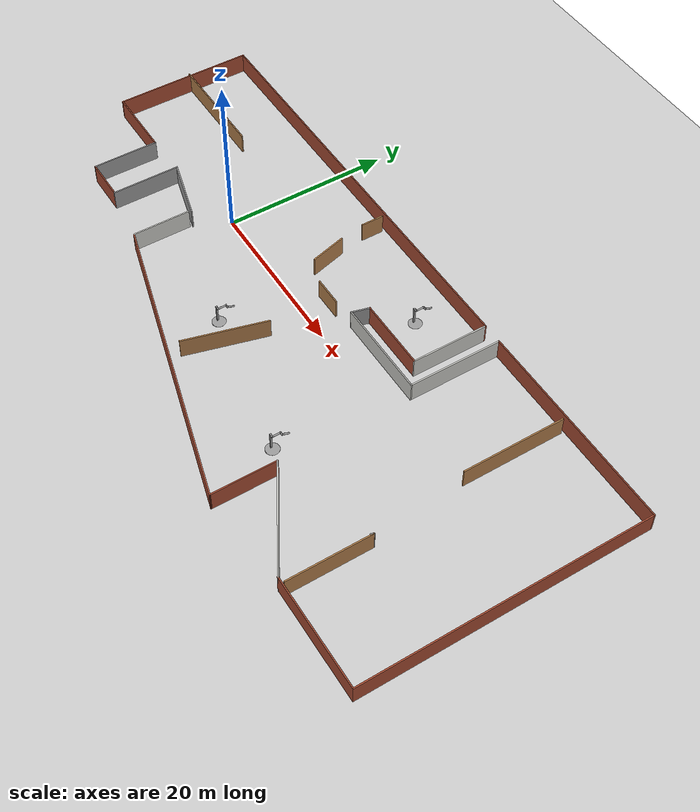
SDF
<sdf version="1.7">
 <world name="default">
  <light name="sun" type="directional">
   <pose>0 0 10 0 -0 0</pose>
   <diffuse>0.8 0.8 0.8 1</diffuse>
   <specular>0.2 0.2 0.2 1</specular>
   <attenuation>
    <range>1000</range>
    <constant>0.9</constant>
    <linear>0.01</linear>
    <quadratic>0.001</quadratic>
   </attenuation>
   <direction>-0.5 0.1 -0.9</direction>
   <spot><inner_angle>0</inner_angle><outer_angle>0</outer_angle><falloff>0</falloff></spot>
  </light>
  <model name="ground_plane">
   <static>1</static>
   <link name="link">
    <collision name="collision">
     <geometry><plane><normal>0 0 1</normal><size>100 100</size></plane></geometry>
     <surface>
      <contact><collide_bitmask>65535</collide_bitmask></contact>
      <friction><ode><mu>100</mu><mu2>50</mu2></ode></friction>
     </surface>
    </collision>
    <visual name="visual">
     <cast_shadows>0</cast_shadows>
     <geometry><plane><normal>0 0 1</normal><size>100 100</size></plane></geometry>
     <material>
      <script><uri>file://media/materials/scripts/gazebo.material</uri><name>Gazebo/Grey</name></script>
     </material>
    </visual>
   </link>
  </model>
  <gravity>0 0 -9.8</gravity>
  <magnetic_field>6e-06 2.3e-05 -4.2e-05</magnetic_field>
  <atmosphere type="adiabatic"/>
  <physics type="ode">
   <max_step_size>0.001</max_step_size>
   <real_time_factor>1</real_time_factor>
   <real_time_update_rate>1000</real_time_update_rate>
  </physics>
  <scene><ambient>0.4 0.4 0.4 1</ambient><background>0.7 0.7 0.7 1</background><shadows>1</shadows></scene>
  <spherical_coordinates>
   <surface_model>EARTH_WGS84</surface_model>
   <latitude_deg>0</latitude_deg>
   <longitude_deg>0</longitude_deg>
   <elevation>0</elevation>
   <heading_deg>0</heading_deg>
  </spherical_coordinates>
  <model name="world">
   <pose>17.1031 -3.11097 0 0 -0 0</pose>
   <link name="Wall_39">
    <collision name="Wall_39_Collision">
     <geometry><box><size>7 0.15 2.5</size></box></geometry>
     <pose>0 0 1.25 0 -0 0</pose>
    </collision>
    <visual name="Wall_39_Visual">
     <pose>0 0 1.25 0 -0 0</pose>
     <geometry><box><size>7 0.15 2.5</size></box></geometry>
     <material>
      <script><uri>file://media/materials/scripts/gazebo.material</uri><name>Gazebo/CeilingTiled</name></script>
      <ambient>1 1 1 1</ambient>
     </material>
     <meta><layer>0</layer></meta>
    </visual>
    <pose>-19.2015 -4.74772 0 0 -0 -1.5708</pose>
   </link>
   <link name="Wall_40">
    <collision name="Wall_40_Collision">
     <geometry><box><size>36.5 0.15 2.5</size></box></geometry>
     <pose>0 0 1.25 0 -0 0</pose>
    </collision>
    <visual name="Wall_40_Visual">
     <pose>0 0 1.25 0 -0 0</pose>
     <geometry><box><size>36.5 0.15 2.5</size></box></geometry>
     <material>
      <script><uri>file://media/materials/scripts/gazebo.material</uri><name>Gazebo/Bricks</name></script>
      <ambient>1 1 1 1</ambient>
     </material>
     <meta><layer>0</layer></meta>
    </visual>
    <pose>-1.64575 -12.8768 0 0 -0 -0.261799</pose>
   </link>
   <link name="Wall_41">
    <collision name="Wall_41_Collision">
     <geometry><box><size>7.75 0.15 2.5</size></box></geometry>
     <pose>0 0 1.25 0 -0 0</pose>
    </collision>
    <visual name="Wall_41_Visual">
     <pose>0 0 1.25 0 -0 0</pose>
     <geometry><box><size>7.75 0.15 2.5</size></box></geometry>
     <material>
      <script><uri>file://media/materials/scripts/gazebo.material</uri><name>Gazebo/Bricks</name></script>
      <ambient>1 1 1 1</ambient>
     </material>
     <meta><layer>0</layer></meta>
    </visual>
    <pose>15.9099 -13.7808 0 0 -0 1.5708</pose>
   </link>
   <link name="Wall_42">
    <collision name="Wall_42_Collision">
     <geometry><box><size>13.25 0.15 2.5</size></box></geometry>
     <pose>0 0 1.25 0 -0 0</pose>
    </collision>
    <visual name="Wall_42_Visual">
     <pose>0 0 1.25 0 -0 0</pose>
     <geometry><box><size>13.25 0.15 2.5</size></box></geometry>
     <material>
      <script><uri>file://media/materials/scripts/gazebo.material</uri><name>Gazebo/CeilingTiled</name></script>
      <ambient>1 1 1 1</ambient>
     </material>
     <meta><layer>0</layer></meta>
    </visual>
    <pose>21.5824 -13.2558 0 0 -0 -0.523599</pose>
   </link>
   <link name="Wall_43">
    <collision name="Wall_43_Collision">
     <geometry><box><size>13.25 0.15 2.5</size></box></geometry>
     <pose>0 0 1.25 0 -0 0</pose>
    </collision>
    <visual name="Wall_43_Visual">
     <pose>0 0 1.25 0 -0 0</pose>
     <geometry><box><size>13.25 0.15 2.5</size></box></geometry>
     <material>
      <script><uri>file://media/materials/scripts/gazebo.material</uri><name>Gazebo/Bricks</name></script>
      <ambient>1 1 1 1</ambient>
     </material>
     <meta><layer>0</layer></meta>
    </visual>
    <pose>33.8049 -16.5308 0 0 -0 0</pose>
   </link>
   <link name="Wall_44">
    <collision name="Wall_44_Collision">
     <geometry><box><size>34.25 0.15 2.5</size></box></geometry>
     <pose>0 0 1.25 0 -0 0</pose>
    </collision>
    <visual name="Wall_44_Visual">
     <pose>0 0 1.25 0 -0 0</pose>
     <geometry><box><size>34.25 0.15 2.5</size></box></geometry>
     <material>
      <script><uri>file://media/materials/scripts/gazebo.material</uri><name>Gazebo/Bricks</name></script>
      <ambient>1 1 1 1</ambient>
     </material>
     <meta><layer>0</layer></meta>
    </visual>
    <pose>40.3549 0.519205 0 0 -0 1.5708</pose>
   </link>
   <link name="Wall_45">
    <collision name="Wall_45_Collision">
     <geometry><box><size>25.5 0.15 2.5</size></box></geometry>
     <pose>0 0 1.25 0 -0 0</pose>
    </collision>
    <visual name="Wall_45_Visual">
     <pose>0 0 1.25 0 -0 0</pose>
     <geometry><box><size>25.5 0.15 2.5</size></box></geometry>
     <material>
      <script><uri>file://media/materials/scripts/gazebo.material</uri><name>Gazebo/Bricks</name></script>
      <ambient>1 1 1 1</ambient>
     </material>
     <meta><layer>0</layer></meta>
    </visual>
    <pose>27.6799 17.5692 0 0 -0 3.14159</pose>
   </link>
   <link name="Wall_46">
    <collision name="Wall_46_Collision">
     <geometry><box><size>11.25 0.15 2.5</size></box></geometry>
     <pose>0 0 1.25 0 -0 0</pose>
    </collision>
    <visual name="Wall_46_Visual">
     <pose>0 0 1.25 0 -0 0</pose>
     <geometry><box><size>11.25 0.15 2.5</size></box></geometry>
     <material>
      <script><uri>file://media/materials/scripts/gazebo.material</uri><name>Gazebo/CeilingTiled</name></script>
      <ambient>1 1 1 1</ambient>
     </material>
     <meta><layer>0</layer></meta>
    </visual>
    <pose>15.0049 12.0192 0 0 -0 -1.5708</pose>
   </link>
   <link name="Wall_47">
    <collision name="Wall_47_Collision">
     <geometry><box><size>11.75 0.15 2.5</size></box></geometry>
     <pose>0 0 1.25 0 -0 0</pose>
    </collision>
    <visual name="Wall_47_Visual">
     <pose>0 0 1.25 0 -0 0</pose>
     <geometry><box><size>11.75 0.15 2.5</size></box></geometry>
     <material>
      <script><uri>file://media/materials/scripts/gazebo.material</uri><name>Gazebo/CeilingTiled</name></script>
      <ambient>1 1 1 1</ambient>
     </material>
     <meta><layer>0</layer></meta>
    </visual>
    <pose>9.20488 6.4692 0 0 -0 3.14159</pose>
   </link>
   <link name="Wall_48">
    <collision name="Wall_48_Collision">
     <geometry><box><size>2.25 0.15 2.5</size></box></geometry>
     <pose>0 0 1.25 0 -0 0</pose>
    </collision>
    <visual name="Wall_48_Visual">
     <pose>0 0 1.25 0 -0 0</pose>
     <geometry><box><size>2.25 0.15 2.5</size></box></geometry>
     <material>
      <script><uri>file://media/materials/scripts/gazebo.material</uri><name>Gazebo/Grey</name></script>
      <ambient>1 1 1 1</ambient>
     </material>
     <meta><layer>0</layer></meta>
    </visual>
    <pose>3.67664 7.48343 0 0 -0 1.309</pose>
   </link>
   <link name="Wall_49">
    <collision name="Wall_49_Collision">
     <geometry><box><size>8.75 0.15 2.5</size></box></geometry>
     <pose>0 0 1.25 0 -0 0</pose>
    </collision>
    <visual name="Wall_49_Visual">
     <pose>0 0 1.25 0 -0 0</pose>
     <geometry><box><size>8.75 0.15 2.5</size></box></geometry>
     <material>
      <script><uri>file://media/materials/scripts/gazebo.material</uri><name>Gazebo/Bricks</name></script>
      <ambient>1 1 1 1</ambient>
     </material>
     <meta><layer>0</layer></meta>
    </visual>
    <pose>8.2484 8.49765 0 0 -0 0</pose>
   </link>
   <link name="Wall_50">
    <collision name="Wall_50_Collision">
     <geometry><box><size>9.25 0.15 2.5</size></box></geometry>
     <pose>0 0 1.25 0 -0 0</pose>
    </collision>
    <visual name="Wall_50_Visual">
     <pose>0 0 1.25 0 -0 0</pose>
     <geometry><box><size>9.25 0.15 2.5</size></box></geometry>
     <material>
      <script><uri>file://media/materials/scripts/gazebo.material</uri><name>Gazebo/CeilingTiled</name></script>
      <ambient>1 1 1 1</ambient>
     </material>
     <meta><layer>0</layer></meta>
    </visual>
    <pose>12.5484 13.0476 0 0 -0 1.5708</pose>
   </link>
   <link name="Wall_51">
    <collision name="Wall_51_Collision">
     <geometry><box><size>52.75 0.15 2.5</size></box></geometry>
     <pose>0 0 1.25 0 -0 0</pose>
    </collision>
    <visual name="Wall_51_Visual">
     <pose>0 0 1.25 0 -0 0</pose>
     <geometry><box><size>52.75 0.15 2.5</size></box></geometry>
     <material>
      <script><uri>file://media/materials/scripts/gazebo.material</uri><name>Gazebo/Bricks</name></script>
      <ambient>1 1 1 1</ambient>
     </material>
     <meta><layer>0</layer></meta>
    </visual>
    <pose>-13.7516 17.5976 0 0 -0 3.14159</pose>
   </link>
   <link name="Wall_52">
    <collision name="Wall_52_Collision">
     <geometry><box><size>17 0.15 2.5</size></box></geometry>
     <pose>0 0 1.25 0 -0 0</pose>
    </collision>
    <visual name="Wall_52_Visual">
     <pose>0 0 1.25 0 -0 0</pose>
     <geometry><box><size>17 0.15 2.5</size></box></geometry>
     <material>
      <script><uri>file://media/materials/scripts/gazebo.material</uri><name>Gazebo/Bricks</name></script>
      <ambient>1 1 1 1</ambient>
     </material>
     <meta><layer>0</layer></meta>
    </visual>
    <pose>-40.0516 9.17265 0 0 -0 -1.5708</pose>
   </link>
   <link name="Wall_53">
    <collision name="Wall_53_Collision">
     <geometry><box><size>8.75 0.15 2.5</size></box></geometry>
     <pose>0 0 1.25 0 -0 0</pose>
    </collision>
    <visual name="Wall_53_Visual">
     <pose>0 0 1.25 0 -0 0</pose>
     <geometry><box><size>8.75 0.15 2.5</size></box></geometry>
     <material>
      <script><uri>file://media/materials/scripts/gazebo.material</uri><name>Gazebo/Bricks</name></script>
      <ambient>1 1 1 1</ambient>
     </material>
     <meta><layer>0</layer></meta>
    </visual>
    <pose>-35.7516 0.747649 0 0 -0 0</pose>
   </link>
   <link name="Wall_54">
    <collision name="Wall_54_Collision">
     <geometry><box><size>8 0.15 2.5</size></box></geometry>
     <pose>0 0 1.25 0 -0 0</pose>
    </collision>
    <visual name="Wall_54_Visual">
     <pose>0 0 1.25 0 -0 0</pose>
     <geometry><box><size>8 0.15 2.5</size></box></geometry>
     <material>
      <script><uri>file://media/materials/scripts/gazebo.material</uri><name>Gazebo/Grey</name></script>
      <ambient>1 1 1 1</ambient>
     </material>
     <meta><layer>0</layer></meta>
    </visual>
    <pose>-31.4516 -3.17735 0 0 -0 -1.5708</pose>
   </link>
   <link name="Wall_55">
    <collision name="Wall_55_Collision">
     <geometry><box><size>5.25 0.15 2.5</size></box></geometry>
     <pose>0 0 1.25 0 -0 0</pose>
    </collision>
    <visual name="Wall_55_Visual">
     <pose>0 0 1.25 0 -0 0</pose>
     <geometry><box><size>5.25 0.15 2.5</size></box></geometry>
     <material>
      <script><uri>file://media/materials/scripts/gazebo.material</uri><name>Gazebo/Bricks</name></script>
      <ambient>1 1 1 1</ambient>
     </material>
     <meta><layer>0</layer></meta>
    </visual>
    <pose>-28.9016 -7.10235 0 0 -0 0</pose>
   </link>
   <link name="Wall_56">
    <collision name="Wall_56_Collision">
     <geometry><box><size>8.25 0.15 2.5</size></box></geometry>
     <pose>0 0 1.25 0 -0 0</pose>
    </collision>
    <visual name="Wall_56_Visual">
     <pose>0 0 1.25 0 -0 0</pose>
     <geometry><box><size>8.25 0.15 2.5</size></box></geometry>
     <material>
      <script><uri>file://media/materials/scripts/gazebo.material</uri><name>Gazebo/Grey</name></script>
      <ambient>1 1 1 1</ambient>
     </material>
     <meta><layer>0</layer></meta>
    </visual>
    <pose>-26.3516 -3.05235 0 0 -0 1.5708</pose>
   </link>
   <link name="Wall_57">
    <collision name="Wall_57_Collision">
     <geometry><box><size>7.75 0.15 2.5</size></box></geometry>
     <pose>0 0 1.25 0 -0 0</pose>
    </collision>
    <visual name="Wall_57_Visual">
     <pose>0 0 1.25 0 -0 0</pose>
     <geometry><box><size>7.75 0.15 2.5</size></box></geometry>
     <material>
      <script><uri>file://media/materials/scripts/gazebo.material</uri><name>Gazebo/Grey</name></script>
      <ambient>1 1 1 1</ambient>
     </material>
     <meta><layer>0</layer></meta>
    </visual>
    <pose>-22.6811 0.014136 0 0 -0 -0.261799</pose>
   </link>
   <link name="Wall_59">
    <collision name="Wall_59_Collision">
     <geometry><box><size>13.5 0.15 2.5</size></box></geometry>
     <pose>0 0 1.25 0 -0 0</pose>
    </collision>
    <visual name="Wall_59_Visual">
     <pose>0 0 1.25 0 -0 0</pose>
     <geometry><box><size>13.5 0.15 2.5</size></box></geometry>
     <material>
      <script><uri>file://media/materials/scripts/gazebo.material</uri><name>Gazebo/Wood</name></script>
      <ambient>1 1 1 1</ambient>
     </material>
     <meta><layer>0</layer></meta>
    </visual>
    <pose>-33.6799 10.1153 0 0 -0 0</pose>
   </link>
   <link name="Wall_61">
    <collision name="Wall_61_Collision">
     <geometry><box><size>10 0.15 2.5</size></box></geometry>
     <pose>0 0 1.25 0 -0 0</pose>
    </collision>
    <visual name="Wall_61_Visual">
     <pose>0 0 1.25 0 -0 0</pose>
     <geometry><box><size>10 0.15 2.5</size></box></geometry>
     <material>
      <script><uri>file://media/materials/scripts/gazebo.material</uri><name>Gazebo/Wood</name></script>
      <ambient>1 1 1 1</ambient>
     </material>
     <meta><layer>0</layer></meta>
    </visual>
    <pose>-1.43716 -6.30176 0 0 -0 1.309</pose>
   </link>
   <link name="Wall_63">
    <collision name="Wall_63_Collision">
     <geometry><box><size>12.25 0.15 2.5</size></box></geometry>
     <pose>0 0 1.25 0 -0 0</pose>
    </collision>
    <visual name="Wall_63_Visual">
     <pose>0 0 1.25 0 -0 0</pose>
     <geometry><box><size>12.25 0.15 2.5</size></box></geometry>
     <material>
      <script><uri>file://media/materials/scripts/gazebo.material</uri><name>Gazebo/Wood</name></script>
      <ambient>1 1 1 1</ambient>
     </material>
     <meta><layer>0</layer></meta>
    </visual>
    <pose>26.6497 11.0292 0 0 -0 -1.5708</pose>
   </link>
   <link name="Wall_65">
    <collision name="Wall_65_Collision">
     <geometry><box><size>0.5 0.15 2.5</size></box></geometry>
     <pose>0 0 1.25 0 -0 0</pose>
    </collision>
    <visual name="Wall_65_Visual">
     <pose>0 0 1.25 0 -0 0</pose>
     <geometry><box><size>0.5 0.15 2.5</size></box></geometry>
     <material>
      <script><uri>file://media/materials/scripts/gazebo.material</uri><name>Gazebo/Grey</name></script>
      <ambient>1 1 1 1</ambient>
     </material>
     <meta><layer>0</layer></meta>
    </visual>
    <pose>27.9184 -6.56096 0 0 -0 1.309</pose>
   </link>
   <link name="Wall_66">
    <collision name="Wall_66_Collision">
     <geometry><box><size>10 0.15 2.5</size></box></geometry>
     <pose>0 0 1.25 0 -0 0</pose>
    </collision>
    <visual name="Wall_66_Visual">
     <pose>0 0 1.25 0 -0 0</pose>
     <geometry><box><size>10 0.15 2.5</size></box></geometry>
     <material>
      <script><uri>file://media/materials/scripts/gazebo.material</uri><name>Gazebo/Wood</name></script>
      <ambient>1 1 1 1</ambient>
     </material>
     <meta><layer>0</layer></meta>
    </visual>
    <pose>27.9637 -11.3169 0 0 -0 -1.5708</pose>
   </link>
   <link name="Wall_68">
    <collision name="Wall_68_Collision">
     <geometry><box><size>2.75 0.15 2.5</size></box></geometry>
     <pose>0 0 1.25 0 -0 0</pose>
    </collision>
    <visual name="Wall_68_Visual">
     <pose>0 0 1.25 0 -0 0</pose>
     <geometry><box><size>2.75 0.15 2.5</size></box></geometry>
     <material>
      <script><uri>file://media/materials/scripts/gazebo.material</uri><name>Gazebo/Wood</name></script>
      <ambient>1 1 1 1</ambient>
     </material>
     <meta><layer>0</layer></meta>
    </visual>
    <pose>-6.94669 15.7792 0 0 -0 -1.5708</pose>
   </link>
   <link name="Wall_70">
    <collision name="Wall_70_Collision">
     <geometry><box><size>4.5 0.15 2.5</size></box></geometry>
     <pose>0 0 1.25 0 -0 0</pose>
    </collision>
    <visual name="Wall_70_Visual">
     <pose>0 0 1.25 0 -0 0</pose>
     <geometry><box><size>4.5 0.15 2.5</size></box></geometry>
     <material>
      <script><uri>file://media/materials/scripts/gazebo.material</uri><name>Gazebo/Wood</name></script>
      <ambient>1 1 1 1</ambient>
     </material>
     <meta><layer>0</layer></meta>
    </visual>
    <pose>-5.81911 9.23777 0 0 -0 -1.309</pose>
   </link>
   <link name="Wall_72">
    <collision name="Wall_72_Collision">
     <geometry><box><size>3.5 0.15 2.5</size></box></geometry>
     <pose>0 0 1.25 0 -0 0</pose>
    </collision>
    <visual name="Wall_72_Visual">
     <pose>0 0 1.25 0 -0 0</pose>
     <geometry><box><size>3.5 0.15 2.5</size></box></geometry>
     <material>
      <script><uri>file://media/materials/scripts/gazebo.material</uri><name>Gazebo/Wood</name></script>
      <ambient>1 1 1 1</ambient>
     </material>
     <meta><layer>0</layer></meta>
    </visual>
    <pose>-0.472199 5.88042 0 0 -0 0</pose>
   </link>
   <static>1</static>
  </model>
  <model name="double_pendulum_with_base">
   <link name="base">
    <inertial>
     <mass>100</mass>
     <inertia><ixx>1</ixx><ixy>0</ixy><ixz>0</ixz><iyy>1</iyy><iyz>0</iyz><izz>1</izz></inertia>
    </inertial>
    <visual name="vis_plate_on_ground">
     <pose>0 0 0.01 0 -0 0</pose>
     <geometry><cylinder><radius>0.8</radius><length>0.02</length></cylinder></geometry>
     <material>
      <script><uri>file://media/materials/scripts/gazebo.material</uri><name>Gazebo/Grey</name></script>
     </material>
    </visual>
    <visual name="vis_pole">
     <pose>-0.275 0 1.1 0 -0 0</pose>
     <geometry><box><size>0.2 0.2 2.2</size></box></geometry>
     <material>
      <script><uri>file://media/materials/scripts/gazebo.material</uri><name>Gazebo/Grey</name></script>
     </material>
    </visual>
    <collision name="col_plate_on_ground">
     <pose>0 0 0.01 0 -0 0</pose>
     <geometry><cylinder><radius>0.8</radius><length>0.02</length></cylinder></geometry>
    </collision>
    <collision name="col_pole">
     <pose>-0.275 0 1.1 0 -0 0</pose>
     <geometry><box><size>0.2 0.2 2.2</size></box></geometry>
    </collision>
   </link>
   <link name="upper_link">
    <pose>0 0 2.1 -1.5708 0 0</pose>
    <inertial>
     <pose>0 0 0.5 0 -0 0</pose>
     <inertia><ixx>1</ixx><ixy>0</ixy><ixz>0</ixz><iyy>1</iyy><iyz>0</iyz><izz>1</izz></inertia>
     <mass>1</mass>
    </inertial>
    <visual name="vis_upper_joint">
     <pose>-0.05 0 0 3.14159 1.57079 3.14159</pose>
     <geometry><cylinder><radius>0.1</radius><length>0.3</length></cylinder></geometry>
     <material>
      <script><uri>file://media/materials/scripts/gazebo.material</uri><name>Gazebo/Grey</name></script>
     </material>
    </visual>
    <visual name="vis_lower_joint">
     <pose>0 0 1 3.14159 1.57079 3.14159</pose>
     <geometry><cylinder><radius>0.1</radius><length>0.2</length></cylinder></geometry>
     <material>
      <script><uri>file://media/materials/scripts/gazebo.material</uri><name>Gazebo/Grey</name></script>
     </material>
    </visual>
    <visual name="vis_cylinder">
     <pose>0 0 0.5 0 -0 0</pose>
     <geometry><cylinder><radius>0.1</radius><length>0.9</length></cylinder></geometry>
     <material>
      <script><uri>file://media/materials/scripts/gazebo.material</uri><name>Gazebo/Grey</name></script>
     </material>
    </visual>
    <collision name="col_upper_joint">
     <pose>-0.05 0 0 3.14159 1.57079 3.14159</pose>
     <geometry><cylinder><radius>0.1</radius><length>0.3</length></cylinder></geometry>
    </collision>
    <collision name="col_lower_joint">
     <pose>0 0 1 3.14159 1.57079 3.14159</pose>
     <geometry><cylinder><radius>0.1</radius><length>0.2</length></cylinder></geometry>
    </collision>
    <collision name="col_cylinder">
     <pose>0 0 0.5 0 -0 0</pose>
     <geometry><cylinder><radius>0.1</radius><length>0.9</length></cylinder></geometry>
    </collision>
   </link>
   <link name="lower_link">
    <pose>0.25 1 2.1 -2 0 0</pose>
    <inertial>
     <pose>0 0 0.5 0 -0 0</pose>
     <inertia><ixx>1</ixx><ixy>0</ixy><ixz>0</ixz><iyy>1</iyy><iyz>0</iyz><izz>1</izz></inertia>
     <mass>1</mass>
    </inertial>
    <visual name="vis_lower_joint">
     <pose>0 0 0 3.14159 1.57079 3.14159</pose>
     <geometry><cylinder><radius>0.08</radius><length>0.3</length></cylinder></geometry>
     <material>
      <script><uri>file://media/materials/scripts/gazebo.material</uri><name>Gazebo/Grey</name></script>
     </material>
    </visual>
    <visual name="vis_cylinder">
     <pose>0 0 0.5 0 -0 0</pose>
     <geometry><cylinder><radius>0.1</radius><length>0.9</length></cylinder></geometry>
     <material>
      <script><uri>file://media/materials/scripts/gazebo.material</uri><name>Gazebo/Grey</name></script>
     </material>
    </visual>
    <collision name="col_lower_joint">
     <pose>0 0 0 3.14159 1.57079 3.14159</pose>
     <geometry><cylinder><radius>0.08</radius><length>0.3</length></cylinder></geometry>
    </collision>
    <collision name="col_cylinder">
     <pose>0 0 0.5 0 -0 0</pose>
     <geometry><cylinder><radius>0.1</radius><length>0.9</length></cylinder></geometry>
    </collision>
   </link>
   <joint name="upper_joint" type="revolute">
    <parent>base</parent>
    <child>upper_link</child>
    <axis>
     <xyz>1 0 0</xyz>
     <limit><lower>-1e+16</lower><upper>1e+16</upper></limit>
     <dynamics><spring_reference>0</spring_reference><spring_stiffness>0</spring_stiffness></dynamics>
    </axis>
   </joint>
   <joint name="lower_joint" type="revolute">
    <parent>upper_link</parent>
    <child>lower_link</child>
    <axis>
     <xyz>1 0 0</xyz>
     <limit><lower>-1e+16</lower><upper>1e+16</upper></limit>
     <dynamics><spring_reference>0</spring_reference><spring_stiffness>0</spring_stiffness></dynamics>
    </axis>
   </joint>
   <pose>23.7483 9.55334 -2e-06 -2e-06 1.1e-05 -0.005763</pose>
  </model>
  <model name="double_pendulum_with_base_clone">
   <link name="base">
    <inertial>
     <mass>100</mass>
     <inertia><ixx>1</ixx><ixy>0</ixy><ixz>0</ixz><iyy>1</iyy><iyz>0</iyz><izz>1</izz></inertia>
    </inertial>
    <visual name="vis_plate_on_ground">
     <pose>0 0 0.01 0 -0 0</pose>
     <geometry><cylinder><radius>0.8</radius><length>0.02</length></cylinder></geometry>
     <material>
      <script><uri>file://media/materials/scripts/gazebo.material</uri><name>Gazebo/Grey</name></script>
     </material>
    </visual>
    <visual name="vis_pole">
     <pose>-0.275 0 1.1 0 -0 0</pose>
     <geometry><box><size>0.2 0.2 2.2</size></box></geometry>
     <material>
      <script><uri>file://media/materials/scripts/gazebo.material</uri><name>Gazebo/Grey</name></script>
     </material>
    </visual>
    <collision name="col_plate_on_ground">
     <pose>0 0 0.01 0 -0 0</pose>
     <geometry><cylinder><radius>0.8</radius><length>0.02</length></cylinder></geometry>
    </collision>
    <collision name="col_pole">
     <pose>-0.275 0 1.1 0 -0 0</pose>
     <geometry><box><size>0.2 0.2 2.2</size></box></geometry>
    </collision>
   </link>
   <link name="upper_link">
    <pose>0 0 2.1 -1.5708 0 0</pose>
    <inertial>
     <pose>0 0 0.5 0 -0 0</pose>
     <inertia><ixx>1</ixx><ixy>0</ixy><ixz>0</ixz><iyy>1</iyy><iyz>0</iyz><izz>1</izz></inertia>
     <mass>1</mass>
    </inertial>
    <visual name="vis_upper_joint">
     <pose>-0.05 0 0 3.14159 1.57079 3.14159</pose>
     <geometry><cylinder><radius>0.1</radius><length>0.3</length></cylinder></geometry>
     <material>
      <script><uri>file://media/materials/scripts/gazebo.material</uri><name>Gazebo/Grey</name></script>
     </material>
    </visual>
    <visual name="vis_lower_joint">
     <pose>0 0 1 3.14159 1.57079 3.14159</pose>
     <geometry><cylinder><radius>0.1</radius><length>0.2</length></cylinder></geometry>
     <material>
      <script><uri>file://media/materials/scripts/gazebo.material</uri><name>Gazebo/Grey</name></script>
     </material>
    </visual>
    <visual name="vis_cylinder">
     <pose>0 0 0.5 0 -0 0</pose>
     <geometry><cylinder><radius>0.1</radius><length>0.9</length></cylinder></geometry>
     <material>
      <script><uri>file://media/materials/scripts/gazebo.material</uri><name>Gazebo/Grey</name></script>
     </material>
    </visual>
    <collision name="col_upper_joint">
     <pose>-0.05 0 0 3.14159 1.57079 3.14159</pose>
     <geometry><cylinder><radius>0.1</radius><length>0.3</length></cylinder></geometry>
    </collision>
    <collision name="col_lower_joint">
     <pose>0 0 1 3.14159 1.57079 3.14159</pose>
     <geometry><cylinder><radius>0.1</radius><length>0.2</length></cylinder></geometry>
    </collision>
    <collision name="col_cylinder">
     <pose>0 0 0.5 0 -0 0</pose>
     <geometry><cylinder><radius>0.1</radius><length>0.9</length></cylinder></geometry>
    </collision>
   </link>
   <link name="lower_link">
    <pose>0.25 1 2.1 -2 0 0</pose>
    <inertial>
     <pose>0 0 0.5 0 -0 0</pose>
     <inertia><ixx>1</ixx><ixy>0</ixy><ixz>0</ixz><iyy>1</iyy><iyz>0</iyz><izz>1</izz></inertia>
     <mass>1</mass>
    </inertial>
    <visual name="vis_lower_joint">
     <pose>0 0 0 3.14159 1.57079 3.14159</pose>
     <geometry><cylinder><radius>0.08</radius><length>0.3</length></cylinder></geometry>
     <material>
      <script><uri>file://media/materials/scripts/gazebo.material</uri><name>Gazebo/Grey</name></script>
     </material>
    </visual>
    <visual name="vis_cylinder">
     <pose>0 0 0.5 0 -0 0</pose>
     <geometry><cylinder><radius>0.1</radius><length>0.9</length></cylinder></geometry>
     <material>
      <script><uri>file://media/materials/scripts/gazebo.material</uri><name>Gazebo/Grey</name></script>
     </material>
    </visual>
    <collision name="col_lower_joint">
     <pose>0 0 0 3.14159 1.57079 3.14159</pose>
     <geometry><cylinder><radius>0.08</radius><length>0.3</length></cylinder></geometry>
    </collision>
    <collision name="col_cylinder">
     <pose>0 0 0.5 0 -0 0</pose>
     <geometry><cylinder><radius>0.1</radius><length>0.9</length></cylinder></geometry>
    </collision>
   </link>
   <joint name="upper_joint" type="revolute">
    <parent>base</parent>
    <child>upper_link</child>
    <axis>
     <xyz>1 0 0</xyz>
     <limit><lower>-1e+16</lower><upper>1e+16</upper></limit>
     <dynamics><spring_reference>0</spring_reference><spring_stiffness>0</spring_stiffness></dynamics>
    </axis>
   </joint>
   <joint name="lower_joint" type="revolute">
    <parent>upper_link</parent>
    <child>lower_link</child>
    <axis>
     <xyz>1 0 0</xyz>
     <limit><lower>-1e+16</lower><upper>1e+16</upper></limit>
     <dynamics><spring_reference>0</spring_reference><spring_stiffness>0</spring_stiffness></dynamics>
    </axis>
   </joint>
   <pose>12.2857 -8.45918 -1e-06 0 6e-06 -0.005508</pose>
  </model>
  <model name="double_pendulum_with_base_clone_0">
   <link name="base">
    <inertial>
     <mass>100</mass>
     <inertia><ixx>1</ixx><ixy>0</ixy><ixz>0</ixz><iyy>1</iyy><iyz>0</iyz><izz>1</izz></inertia>
    </inertial>
    <visual name="vis_plate_on_ground">
     <pose>0 0 0.01 0 -0 0</pose>
     <geometry><cylinder><radius>0.8</radius><length>0.02</length></cylinder></geometry>
     <material>
      <script><uri>file://media/materials/scripts/gazebo.material</uri><name>Gazebo/Grey</name></script>
     </material>
    </visual>
    <visual name="vis_pole">
     <pose>-0.275 0 1.1 0 -0 0</pose>
     <geometry><box><size>0.2 0.2 2.2</size></box></geometry>
     <material>
      <script><uri>file://media/materials/scripts/gazebo.material</uri><name>Gazebo/Grey</name></script>
     </material>
    </visual>
    <collision name="col_plate_on_ground">
     <pose>0 0 0.01 0 -0 0</pose>
     <geometry><cylinder><radius>0.8</radius><length>0.02</length></cylinder></geometry>
    </collision>
    <collision name="col_pole">
     <pose>-0.275 0 1.1 0 -0 0</pose>
     <geometry><box><size>0.2 0.2 2.2</size></box></geometry>
    </collision>
   </link>
   <link name="upper_link">
    <pose>0 0 2.1 -1.5708 0 0</pose>
    <inertial>
     <pose>0 0 0.5 0 -0 0</pose>
     <inertia><ixx>1</ixx><ixy>0</ixy><ixz>0</ixz><iyy>1</iyy><iyz>0</iyz><izz>1</izz></inertia>
     <mass>1</mass>
    </inertial>
    <visual name="vis_upper_joint">
     <pose>-0.05 0 0 3.14159 1.57079 3.14159</pose>
     <geometry><cylinder><radius>0.1</radius><length>0.3</length></cylinder></geometry>
     <material>
      <script><uri>file://media/materials/scripts/gazebo.material</uri><name>Gazebo/Grey</name></script>
     </material>
    </visual>
    <visual name="vis_lower_joint">
     <pose>0 0 1 3.14159 1.57079 3.14159</pose>
     <geometry><cylinder><radius>0.1</radius><length>0.2</length></cylinder></geometry>
     <material>
      <script><uri>file://media/materials/scripts/gazebo.material</uri><name>Gazebo/Grey</name></script>
     </material>
    </visual>
    <visual name="vis_cylinder">
     <pose>0 0 0.5 0 -0 0</pose>
     <geometry><cylinder><radius>0.1</radius><length>0.9</length></cylinder></geometry>
     <material>
      <script><uri>file://media/materials/scripts/gazebo.material</uri><name>Gazebo/Grey</name></script>
     </material>
    </visual>
    <collision name="col_upper_joint">
     <pose>-0.05 0 0 3.14159 1.57079 3.14159</pose>
     <geometry><cylinder><radius>0.1</radius><length>0.3</length></cylinder></geometry>
    </collision>
    <collision name="col_lower_joint">
     <pose>0 0 1 3.14159 1.57079 3.14159</pose>
     <geometry><cylinder><radius>0.1</radius><length>0.2</length></cylinder></geometry>
    </collision>
    <collision name="col_cylinder">
     <pose>0 0 0.5 0 -0 0</pose>
     <geometry><cylinder><radius>0.1</radius><length>0.9</length></cylinder></geometry>
    </collision>
   </link>
   <link name="lower_link">
    <pose>0.25 1 2.1 -2 0 0</pose>
    <inertial>
     <pose>0 0 0.5 0 -0 0</pose>
     <inertia><ixx>1</ixx><ixy>0</ixy><ixz>0</ixz><iyy>1</iyy><iyz>0</iyz><izz>1</izz></inertia>
     <mass>1</mass>
    </inertial>
    <visual name="vis_lower_joint">
     <pose>0 0 0 3.14159 1.57079 3.14159</pose>
     <geometry><cylinder><radius>0.08</radius><length>0.3</length></cylinder></geometry>
     <material>
      <script><uri>file://media/materials/scripts/gazebo.material</uri><name>Gazebo/Grey</name></script>
     </material>
    </visual>
    <visual name="vis_cylinder">
     <pose>0 0 0.5 0 -0 0</pose>
     <geometry><cylinder><radius>0.1</radius><length>0.9</length></cylinder></geometry>
     <material>
      <script><uri>file://media/materials/scripts/gazebo.material</uri><name>Gazebo/Grey</name></script>
     </material>
    </visual>
    <collision name="col_lower_joint">
     <pose>0 0 0 3.14159 1.57079 3.14159</pose>
     <geometry><cylinder><radius>0.08</radius><length>0.3</length></cylinder></geometry>
    </collision>
    <collision name="col_cylinder">
     <pose>0 0 0.5 0 -0 0</pose>
     <geometry><cylinder><radius>0.1</radius><length>0.9</length></cylinder></geometry>
    </collision>
   </link>
   <joint name="upper_joint" type="revolute">
    <parent>base</parent>
    <child>upper_link</child>
    <axis>
     <xyz>1 0 0</xyz>
     <limit><lower>-1e+16</lower><upper>1e+16</upper></limit>
     <dynamics><spring_reference>0</spring_reference><spring_stiffness>0</spring_stiffness></dynamics>
    </axis>
   </joint>
   <joint name="lower_joint" type="revolute">
    <parent>upper_link</parent>
    <child>lower_link</child>
    <axis>
     <xyz>1 0 0</xyz>
     <limit><lower>-1e+16</lower><upper>1e+16</upper></limit>
     <dynamics><spring_reference>0</spring_reference><spring_stiffness>0</spring_stiffness></dynamics>
    </axis>
   </joint>
   <pose>29.9999 -12.0009 -0 0 -0 -0.005214</pose>
  </model>
 </world>
</sdf>
